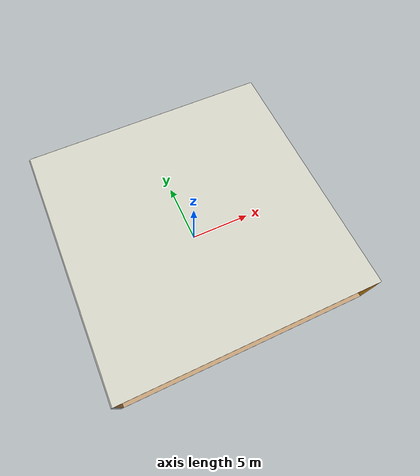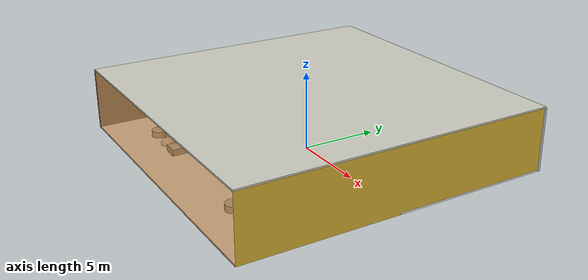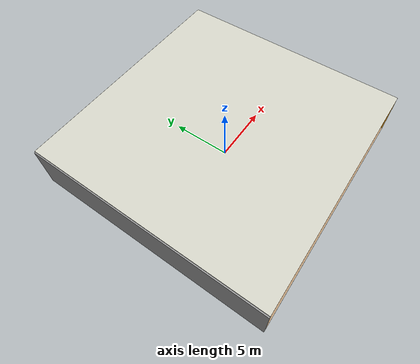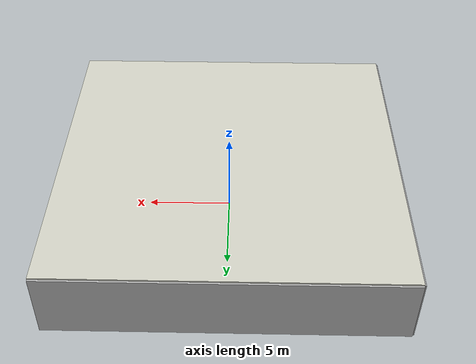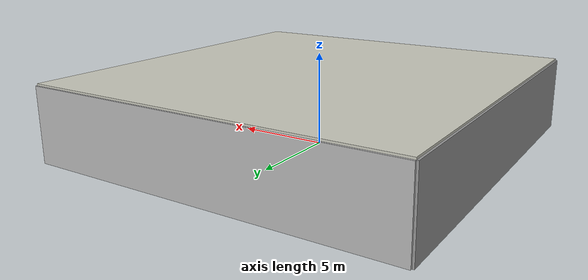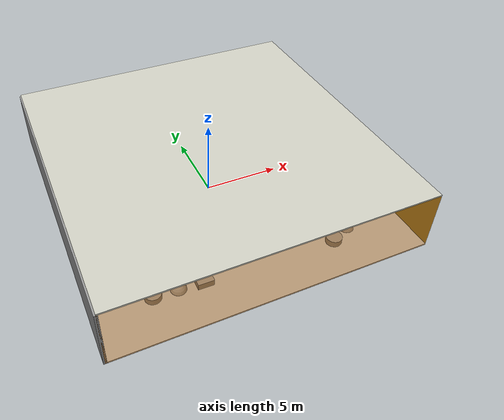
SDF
<sdf version="1.4">
 <world name="default">
  <physics type="ode">
   <max_step_size>0.001</max_step_size>
   <real_time_factor>1</real_time_factor>
   <real_time_update_rate>1000</real_time_update_rate>
   <gravity>0 0 -9.8</gravity>
  </physics>
  <scene><ambient>0.4 0.4 0.4 1</ambient><background>0.7 0.7 0.7 1</background><shadows>1</shadows></scene>
  <model name="Surrounding">
   <static>1</static>
   <link name="Ceiling">
    <collision name="Ceiling_Collision"><geometry><box><size>20 20 0.1</size></box></geometry></collision>
    <visual name="Ceiling_Visual">
     <geometry><box><size>20 20 0.1</size></box></geometry>
     <material>
      <script><uri>file://media/materials/scripts/gazebo.material</uri><name>Gazebo/PaintedWall</name></script>
     </material>
    </visual>
    <pose>0 0 4.05 0 0 0</pose>
   </link>
   <link name="Wall_South">
    <collision name="Wall_South_Collision">
     <geometry><box><size>20 0 4</size></box></geometry>
     <pose>0 0 2 0 -0 0</pose>
    </collision>
    <visual name="Wall_South_Visual">
     <pose>0 0 2 0 -0 0</pose>
     <geometry><box><size>20 0 4</size></box></geometry>
     <material>
      <script>
       <uri>file://media/materials/scripts/gazebo.material</uri>
       <name>Gazebo/OrangeTransparent</name>
      </script>
     </material>
    </visual>
    <velocity_decay><linear>0</linear><angular>0</angular></velocity_decay>
    <pose>0 -10 0 0 -0 0</pose>
   </link>
   <link name="Wall_East">
    <collision name="Wall_21_Collision">
     <geometry><box><size>20 0 4</size></box></geometry>
     <pose>0 0 2 0 -0 0</pose>
    </collision>
    <visual name="Wall_21_Visual">
     <pose>0 0 2 0 -0 0</pose>
     <geometry><box><size>20 0 4</size></box></geometry>
     <material>
      <script><uri>file://media/materials/scripts/gazebo.material</uri><name>Gazebo/Gold</name></script>
     </material>
    </visual>
    <velocity_decay><linear>0</linear><angular>0</angular></velocity_decay>
    <pose>10 0 0 0 -0 1.5708</pose>
   </link>
   <link name="Wall_North">
    <collision name="Wall_22_Collision">
     <geometry><box><size>20 0.2 4</size></box></geometry>
     <pose>0 0 2 0 -0 0</pose>
    </collision>
    <visual name="Wall_22_Visual">
     <pose>0 0 2 0 -0 0</pose>
     <geometry><box><size>20 0.2 4</size></box></geometry>
     <material>
      <script><uri>file://media/materials/scripts/gazebo.material</uri><name>Gazebo/LightOff</name></script>
     </material>
    </visual>
    <velocity_decay><linear>0</linear><angular>0</angular></velocity_decay>
    <pose>0 10 0 0 -0 0</pose>
   </link>
   <link name="Wall_West">
    <collision name="Wall_23_Collision">
     <geometry><box><size>20 0.2 4</size></box></geometry>
     <pose>0 0 2 0 -0 0</pose>
    </collision>
    <visual name="Wall_23_Visual">
     <pose>0 0 2 0 -0 0</pose>
     <geometry><box><size>20 0.2 4</size></box></geometry>
     <material>
      <script><uri>file://media/materials/scripts/gazebo.material</uri><name>Gazebo/GreyGradientSky</name></script>
     </material>
    </visual>
    <velocity_decay><linear>0</linear><angular>0</angular></velocity_decay>
    <pose>-10 0 0 0 0 -1.5708</pose>
   </link>
   <link name="Ground_link">
    <collision name="collision">
     <pose>0 0 .05 0 -0 0</pose>
     <geometry><box><size>20 20 0.1</size></box></geometry>
    </collision>
    <visual name="visual">
     <pose>0 0 .05 0 -0 0</pose>
     <geometry><box><size>20 20 0.1</size></box></geometry>
     <material>
      <script><uri>file://media/materials/scripts/gazebo.material</uri><name>Gazebo/White</name></script>
     </material>
    </visual>
   </link>
   <static>1</static>
  </model>
  <spherical_coordinates>
   <surface_model>EARTH_WGS84</surface_model>
   <latitude_deg>0</latitude_deg>
   <longitude_deg>0</longitude_deg>
   <elevation>0</elevation>
   <heading_deg>0</heading_deg>
  </spherical_coordinates>
  <light name="lightball_0" type="diffuse">
   <diffuse>0.8 0.8 0.8 1</diffuse>
   <specular>0.2 0.2 0.2 1</specular>
   <attenuation>
    <range>100</range>
    <constant>0.7</constant>
    <linear>0.01</linear>
    <quadratic>0.001</quadratic>
   </attenuation>
   <direction>-0.5 0.1 -0.9</direction>
   <pose>-0.292627356802 -5.08133822149 3.69708230183 0 0 0</pose>
  </light>
  <light name="lightball_1" type="diffuse">
   <diffuse>0.8 0.8 0.8 1</diffuse>
   <specular>0.2 0.2 0.2 1</specular>
   <attenuation>
    <range>100</range>
    <constant>0.7</constant>
    <linear>0.01</linear>
    <quadratic>0.001</quadratic>
   </attenuation>
   <direction>-0.5 0.1 -0.9</direction>
   <pose>1.64839749962 3.27376233328 1.89517932767 0 0 0</pose>
  </light>
  <light name="lightball_2" type="diffuse">
   <diffuse>0.8 0.8 0.8 1</diffuse>
   <specular>0.2 0.2 0.2 1</specular>
   <attenuation>
    <range>100</range>
    <constant>0.7</constant>
    <linear>0.01</linear>
    <quadratic>0.001</quadratic>
   </attenuation>
   <direction>-0.5 0.1 -0.9</direction>
   <pose>1.91015870286 1.04938537669 3.25638336401 0 0 0</pose>
  </light>
  <light name="lightball_3" type="diffuse">
   <diffuse>0.8 0.8 0.8 1</diffuse>
   <specular>0.2 0.2 0.2 1</specular>
   <attenuation>
    <range>100</range>
    <constant>0.7</constant>
    <linear>0.01</linear>
    <quadratic>0.001</quadratic>
   </attenuation>
   <direction>-0.5 0.1 -0.9</direction>
   <pose>6.93101148745 5.58215368355 3.45937783098 0 0 0</pose>
  </light>
  <light name="lightball_4" type="diffuse">
   <diffuse>0.8 0.8 0.8 1</diffuse>
   <specular>0.2 0.2 0.2 1</specular>
   <attenuation>
    <range>100</range>
    <constant>0.7</constant>
    <linear>0.01</linear>
    <quadratic>0.001</quadratic>
   </attenuation>
   <direction>-0.5 0.1 -0.9</direction>
   <pose>6.02894179957 2.57632441859 3.27747702166 0 0 0</pose>
  </light>
  <light name="lightball_5" type="diffuse">
   <diffuse>0.8 0.8 0.8 1</diffuse>
   <specular>0.2 0.2 0.2 1</specular>
   <attenuation>
    <range>100</range>
    <constant>0.7</constant>
    <linear>0.01</linear>
    <quadratic>0.001</quadratic>
   </attenuation>
   <direction>-0.5 0.1 -0.9</direction>
   <pose>2.63933172465 -3.3092837091 0.786822385753 0 0 0</pose>
  </light>
  <light name="lightball_6" type="diffuse">
   <diffuse>0.8 0.8 0.8 1</diffuse>
   <specular>0.2 0.2 0.2 1</specular>
   <attenuation>
    <range>100</range>
    <constant>0.7</constant>
    <linear>0.01</linear>
    <quadratic>0.001</quadratic>
   </attenuation>
   <direction>-0.5 0.1 -0.9</direction>
   <pose>-1.80116695853 9.80608988552 2.66928526269 0 0 0</pose>
  </light>
  <light name="lightball_7" type="diffuse">
   <diffuse>0.8 0.8 0.8 1</diffuse>
   <specular>0.2 0.2 0.2 1</specular>
   <attenuation>
    <range>100</range>
    <constant>0.7</constant>
    <linear>0.01</linear>
    <quadratic>0.001</quadratic>
   </attenuation>
   <direction>-0.5 0.1 -0.9</direction>
   <pose>-4.16981572629 -0.1155648696 1.47072082254 0 0 0</pose>
  </light>
  <light name="lightball_8" type="diffuse">
   <diffuse>0.8 0.8 0.8 1</diffuse>
   <specular>0.2 0.2 0.2 1</specular>
   <attenuation>
    <range>100</range>
    <constant>0.7</constant>
    <linear>0.01</linear>
    <quadratic>0.001</quadratic>
   </attenuation>
   <direction>-0.5 0.1 -0.9</direction>
   <pose>1.92807128807 -7.51404369836 1.31894675902 0 0 0</pose>
  </light>
  <light name="lightball_9" type="diffuse">
   <diffuse>0.8 0.8 0.8 1</diffuse>
   <specular>0.2 0.2 0.2 1</specular>
   <attenuation>
    <range>100</range>
    <constant>0.7</constant>
    <linear>0.01</linear>
    <quadratic>0.001</quadratic>
   </attenuation>
   <direction>-0.5 0.1 -0.9</direction>
   <pose>1.95757373462 -3.92035270446 1.61543265178 0 0 0</pose>
  </light>
  <light name="lightball_10" type="diffuse">
   <diffuse>0.8 0.8 0.8 1</diffuse>
   <specular>0.2 0.2 0.2 1</specular>
   <attenuation>
    <range>100</range>
    <constant>0.7</constant>
    <linear>0.01</linear>
    <quadratic>0.001</quadratic>
   </attenuation>
   <direction>-0.5 0.1 -0.9</direction>
   <pose>-9.97100524363 1.56262381699 2.37475566661 0 0 0</pose>
  </light>
  <light name="lightball_11" type="diffuse">
   <diffuse>0.8 0.8 0.8 1</diffuse>
   <specular>0.2 0.2 0.2 1</specular>
   <attenuation>
    <range>100</range>
    <constant>0.7</constant>
    <linear>0.01</linear>
    <quadratic>0.001</quadratic>
   </attenuation>
   <direction>-0.5 0.1 -0.9</direction>
   <pose>1.87529365538 1.3467002459 2.14724437379 0 0 0</pose>
  </light>
  <light name="lightball_12" type="diffuse">
   <diffuse>0.8 0.8 0.8 1</diffuse>
   <specular>0.2 0.2 0.2 1</specular>
   <attenuation>
    <range>100</range>
    <constant>0.7</constant>
    <linear>0.01</linear>
    <quadratic>0.001</quadratic>
   </attenuation>
   <direction>-0.5 0.1 -0.9</direction>
   <pose>-5.59048215776 7.89545743161 3.0929553545 0 0 0</pose>
  </light>
  <light name="lightball_13" type="diffuse">
   <diffuse>0.8 0.8 0.8 1</diffuse>
   <specular>0.2 0.2 0.2 1</specular>
   <attenuation>
    <range>100</range>
    <constant>0.7</constant>
    <linear>0.01</linear>
    <quadratic>0.001</quadratic>
   </attenuation>
   <direction>-0.5 0.1 -0.9</direction>
   <pose>0.722263319588 -1.93064634575 2.28212674611 0 0 0</pose>
  </light>
  <include>
   <uri>model://textured_shapes</uri>
   <pose>-7.26625738709 7.18605304336 0 0 0 1.15547805489</pose>
  </include>
  <include>
   <uri>model://textured_shapes</uri>
   <pose>-4.98004566907 -7.20649557986 0 0 0 1.55649584922</pose>
  </include>
  <include><uri>model://table</uri><pose>-5.55885101933 5.23033248434 0 0 0 0.494948894143</pose></include>
  <include>
   <uri>model://textured_shapes</uri>
   <pose>6.34373415291 -6.91365149952 0 0 0 2.03169134768</pose>
  </include>
  <include><uri>model://table</uri><pose>6.38527063999 4.32690054106 0 0 0 1.15197027856</pose></include>
 </world>
</sdf>

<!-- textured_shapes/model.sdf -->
<sdf version="1.6">
  <model name="textured_shapes">
    <pose>0 0 0.5 0 0 0</pose>
    <link name="box">
      <pose>0 -1.5 0 0 0 0</pose>
      <collision name="collision">
        <geometry>
          <box>
            <size>1 1 1</size>
          </box>
        </geometry>
      </collision>
      <visual name="visual">
        <geometry>
          <box>
            <size>1 1 1</size>
          </box>
        </geometry>
        <material>
          <script>
            <uri>model://../model_source/models/textured_shapes/materials/scripts</uri>
            <uri>model://../model_source/models/textured_shapes/materials/textures</uri>
            <name>TexturedShape/Squares</name>
          </script>
        </material>
      </visual>
    </link>
    <link name="sphere">
      <collision name="collision">
        <geometry>
          <sphere>
            <radius>0.5</radius>
          </sphere>
        </geometry>
      </collision>
      <visual name="visual">
        <geometry>
          <sphere>
            <radius>0.5</radius>
          </sphere>
        </geometry>
        <material>
          <script>
            <uri>model://../model_source/models/textured_shapes/materials/scripts</uri>
            <uri>model://../model_source/models/textured_shapes/materials/textures</uri>
            <name>TexturedShape/Squares</name>
          </script>
        </material>
      </visual>
    </link>
    <link name="cylinder">
      <pose>0 1.5 0 0 0 0</pose>
      <collision name="collision">
        <geometry>
          <cylinder>
            <radius>0.5</radius>
            <length>1</length>
          </cylinder>
        </geometry>
      </collision>
      <visual name="visual">
        <geometry>
          <cylinder>
            <radius>0.5</radius>
            <length>1</length>
          </cylinder>
        </geometry>
        <material>
          <script>
            <uri>model://../model_source/models/textured_shapes/materials/scripts</uri>
            <uri>model://../model_source/models/textured_shapes/materials/textures</uri>
            <name>TexturedShape/Squares</name>
          </script>
        </material>
      </visual>
    </link>
  </model>
</sdf>

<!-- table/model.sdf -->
<sdf version="1.5">
  <model name="table">
    <static>true</static>
    <link name="link">
      <collision name="surface">
        <pose>0 0 1.0 0 0 0</pose>
        <geometry>
          <box>
            <size>1.5 0.8 0.03</size>
          </box>
        </geometry>
        <surface>
          <friction>
            <ode>
              <mu>0.6</mu>
              <mu2>0.6</mu2>
            </ode>
          </friction>
        </surface>
      </collision>
      <visual name="visual1">
        <pose>0 0 1.0 0 0 0</pose>
        <geometry>
          <box>
            <size>1.5 0.8 0.03</size>
          </box>
        </geometry>
        <material>
          <script>
            <uri>model://media/materials/scripts/gazebo.material</uri>
            <name>Gazebo/Wood</name>
          </script>
        </material>
      </visual>
      <collision name="front_left_leg">
        <pose>0.68 0.38 0.5 0 0 0</pose>
        <geometry>
          <cylinder>
            <radius>0.02</radius>
            <length>1.0</length>
          </cylinder>
        </geometry>
      </collision>
      <visual name="front_left_leg">
        <pose>0.68 0.38 0.5 0 0 0</pose>
        <geometry>
          <cylinder>
            <radius>0.02</radius>
            <length>1.0</length>
          </cylinder>
        </geometry>
        <material>
          <script>
            <uri>model://media/materials/scripts/gazebo.material</uri>
            <name>Gazebo/Grey</name>
          </script>
        </material>
      </visual>
      <collision name="front_right_leg">
        <pose>0.68 -0.38 0.5 0 0 0</pose>
        <geometry>
          <cylinder>
            <radius>0.02</radius>
            <length>1.0</length>
          </cylinder>
        </geometry>
      </collision>
      <visual name="front_right_leg">
        <pose>0.68 -0.38 0.5 0 0 0</pose>
        <geometry>
          <cylinder>
            <radius>0.02</radius>
            <length>1.0</length>
          </cylinder>
        </geometry>
        <material>
          <script>
            <uri>model://media/materials/scripts/gazebo.material</uri>
            <name>Gazebo/Grey</name>
          </script>
        </material>
      </visual>
      <collision name="back_right_leg">
        <pose>-0.68 -0.38 0.5 0 0 0</pose>
        <geometry>
          <cylinder>
            <radius>0.02</radius>
            <length>1.0</length>
          </cylinder>
        </geometry>
      </collision>
      <visual name="back_right_leg">
        <pose>-0.68 -0.38 0.5 0 0 0</pose>
        <geometry>
          <cylinder>
            <radius>0.02</radius>
            <length>1.0</length>
          </cylinder>
        </geometry>
        <material>
          <script>
            <uri>model://media/materials/scripts/gazebo.material</uri>
            <name>Gazebo/Grey</name>
          </script>
        </material>
      </visual>
      <collision name="back_left_leg">
        <pose>-0.68 0.38 0.5 0 0 0</pose>
        <geometry>
          <cylinder>
            <radius>0.02</radius>
            <length>1.0</length>
          </cylinder>
        </geometry>
      </collision>
      <visual name="back_left_leg">
        <pose>-0.68 0.38 0.5 0 0 0</pose>
        <geometry>
          <cylinder>
            <radius>0.02</radius>
            <length>1.0</length>
          </cylinder>
        </geometry>
        <material>
          <script>
            <uri>model://media/materials/scripts/gazebo.material</uri>
            <name>Gazebo/Grey</name>
          </script>
        </material>
      </visual>
    </link>
  </model>
</sdf>
